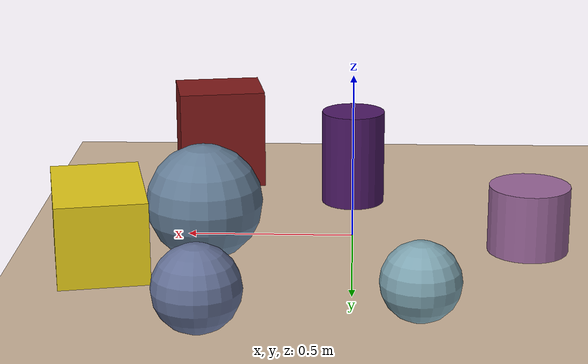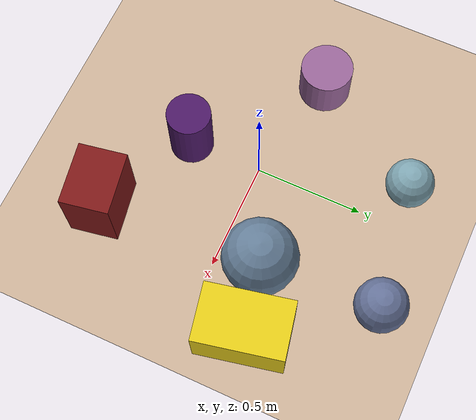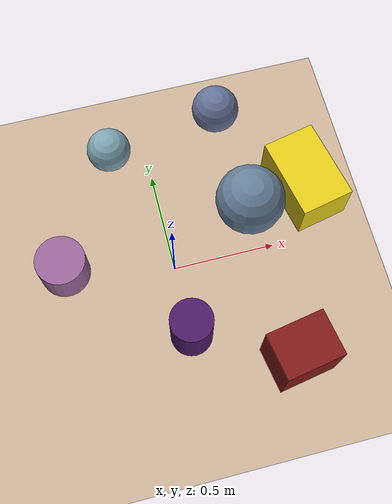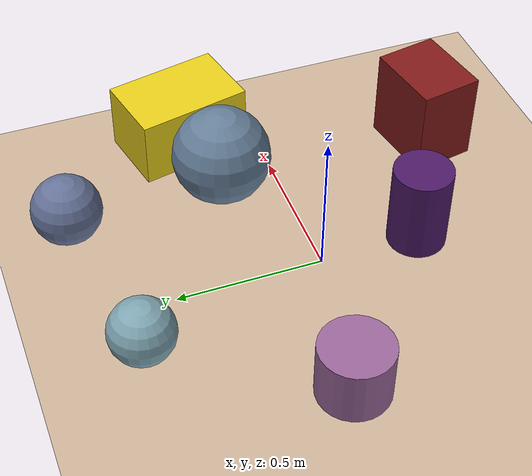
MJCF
<mujoco>
   <asset>
<texture type="skybox" builtin="gradient" rgb1="0.5 0.3 0.5" rgb2="0.8 0.5 0.7" width="500" height="500"/>
<texture name="checker_0" builtin="checker" rgb1="0.4 0.7 0.7" rgb2="0.4 0.3 0.5" width="500" height="500"/>
<texture name="flat_1" builtin="flat" rgb1="0.3 0.1 0.4" rgb2="0.3 0.1 0.4"  width="500" height="500"/>
<texture name="checker_2" builtin="checker" rgb1="0.4 0.7 0.5" rgb2="0.4 0.2 0.7" width="500" height="500"/>
<texture name="checker_3" builtin="checker" rgb1="0.7 0.6 0.8" rgb2="0.3 0.7 0.6" width="500" height="500"/>
<texture name="flat_4" builtin="flat" rgb1="0.5 0.1 0.1" rgb2="0.5 0.1 0.1"  width="500" height="500"/>
<texture name="flat_5" builtin="flat" rgb1="0.6 0.4 0.6" rgb2="0.6 0.4 0.6"  width="500" height="500"/>
<texture name="flat_6" builtin="flat" rgb1="0.9 0.8 0.1" rgb2="0.9 0.8 0.1"  width="500" height="500"/><material name="checker_0_mat" reflectance="0.5149673625295518" texrepeat="2 2" texture="checker_0" texuniform="false" />
<material name="flat_1_mat" reflectance="0.7531494518151983" texture="flat_1" texuniform="true"/>
<material name="checker_2_mat" reflectance="0.9302666262246513" texrepeat="9 9" texture="checker_2" texuniform="false" />
<material name="checker_3_mat" reflectance="0.763693234936177" texrepeat="3 3" texture="checker_3" texuniform="false" />
<material name="flat_4_mat" reflectance="0.13505594779020258" texture="flat_4" texuniform="true"/>
<material name="flat_5_mat" reflectance="0.9163858838798986" texture="flat_5" texuniform="true"/>
<material name="flat_6_mat" reflectance="0.08201191300504618" texture="flat_6" texuniform="true"/>
   </asset>

   <worldbody>
     <geom type="plane" size="1 1 0.1" rgba="0.8 0.7 0.6 1" />
<light pos="0.06269222591127166 -0.5606536534926714 2" dir="0 0 -1" cutoff="90" diffuse="1 1 1" specular="1 1 1"/>
<geom type="sphere" pos="0.43 0.2 0.17" size="0.17 0.17 0.17" material="checker_0_mat" euler="0 0 27" />
<geom type="cylinder" pos="0.0 -0.34 0.15" size="0.1 0.15 0.15" material="flat_1_mat" euler="0 0 60" />
<geom type="sphere" pos="0.4 0.75 0.12" size="0.12 0.12 0.12" material="checker_2_mat" euler="0 0 56" />
<geom type="sphere" pos="-0.18 0.66 0.11" size="0.11 0.11 0.11" material="checker_3_mat" euler="0 0 52" />
<geom type="box" pos="0.45 -0.57 0.16" size="0.14 0.11 0.16" material="flat_4_mat" euler="0 0 10" />
<geom type="cylinder" pos="-0.52 0.11 0.1" size="0.12 0.1 0.1" material="flat_5_mat" euler="0 0 80" />
<geom type="box" pos="0.73 0.26 0.12" size="0.13 0.2 0.12" material="flat_6_mat" euler="0 0 12" /><camera euler="60 0 180" fovy="60" name="camera1" pos="-0.2 -1.5 1"></camera>   </worldbody>
   <visual>
      <headlight diffuse="0.7 0.7 0.7"/>
   </visual>
</mujoco>
